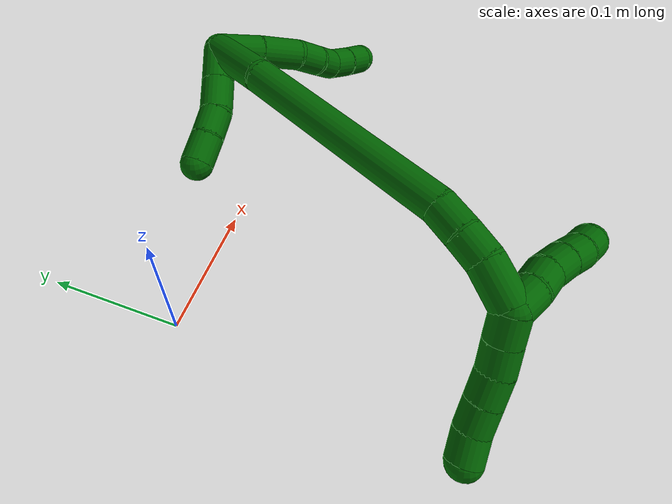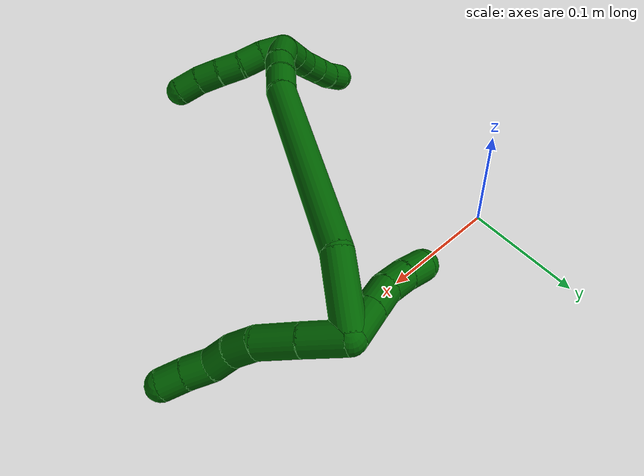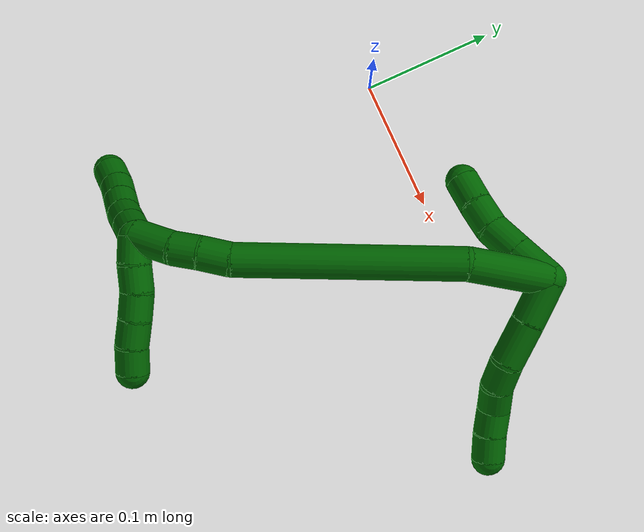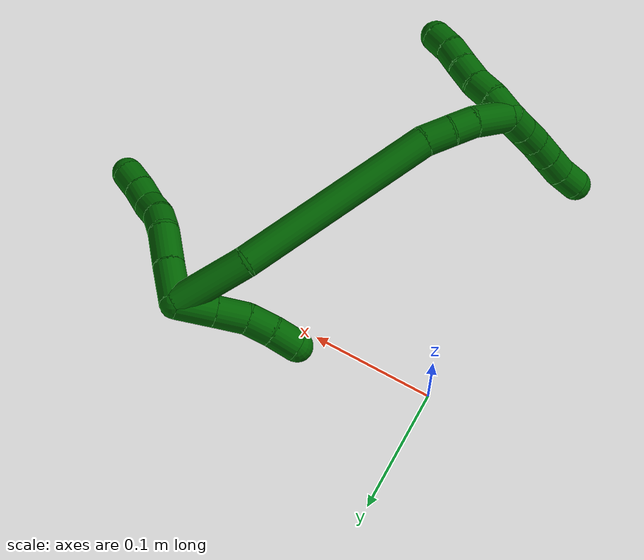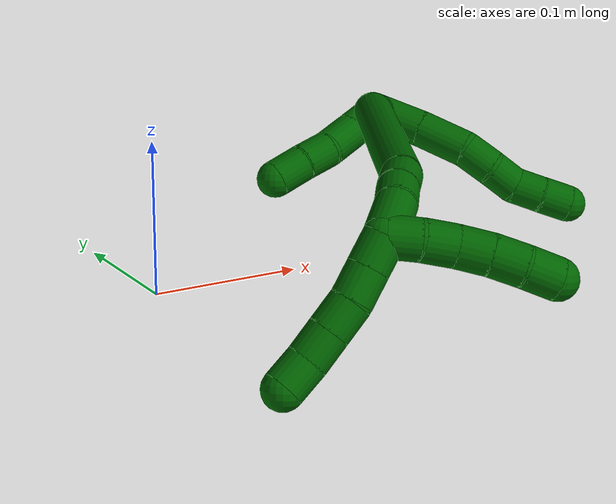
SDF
<sdf version="1.7">
 <world name="default">
  <model name="6">
   <static>0</static>
   <link name="6">
    <collision name="collision-cylinder-e_1_2_8">
     <pose>0.013033 -0.009755 -0.005361 2.0733 0.863958 1.32411</pose>
     <geometry><cylinder><radius>0.0125</radius><length>0.034279</length></cylinder></geometry>
     <surface>
      <friction><ode><mu>1.16</mu><mu2>1.16</mu2><slip1>0</slip1><slip2>0</slip2></ode></friction>
      <contact><ode><kp>1e+06</kp><kd>1</kd><max_vel>0</max_vel><min_depth>0.001</min_depth></ode></contact>
     </surface>
    </collision>
    <visual name="visual-cylinder-e_1_2_8">
     <pose>0.013033 -0.009755 -0.005361 2.0733 0.863958 1.32411</pose>
     <geometry><cylinder><radius>0.0125</radius><length>0.034279</length></cylinder></geometry>
     <material><ambient>0 0.392157 0.003922 1</ambient></material>
    </visual>
    <collision name="collision-cylinder-e_2_8_9">
     <pose>0.038596 -0.029099 -0.016947 2.14661 0.831157 1.36474</pose>
     <geometry><cylinder><radius>0.0125</radius><length>0.033921</length></cylinder></geometry>
     <surface>
      <friction><ode><mu>1.16</mu><mu2>1.16</mu2><slip1>0</slip1><slip2>0</slip2></ode></friction>
      <contact><ode><kp>1e+06</kp><kd>1</kd><max_vel>0</max_vel><min_depth>0.001</min_depth></ode></contact>
     </surface>
    </collision>
    <visual name="visual-cylinder-e_2_8_9">
     <pose>0.038596 -0.029099 -0.016947 2.14661 0.831157 1.36474</pose>
     <geometry><cylinder><radius>0.0125</radius><length>0.033921</length></cylinder></geometry>
     <material><ambient>0 0.392157 0.003922 1</ambient></material>
    </visual>
    <collision name="collision-cylinder-e_3_9_10">
     <pose>0.059104 -0.042882 -0.029267 2.53882 0.823093 1.90386</pose>
     <geometry><cylinder><radius>0.0125</radius><length>0.021764</length></cylinder></geometry>
     <surface>
      <friction><ode><mu>1.16</mu><mu2>1.16</mu2><slip1>0</slip1><slip2>0</slip2></ode></friction>
      <contact><ode><kp>1e+06</kp><kd>1</kd><max_vel>0</max_vel><min_depth>0.001</min_depth></ode></contact>
     </surface>
    </collision>
    <visual name="visual-cylinder-e_3_9_10">
     <pose>0.059104 -0.042882 -0.029267 2.53882 0.823093 1.90386</pose>
     <geometry><cylinder><radius>0.0125</radius><length>0.021764</length></cylinder></geometry>
     <material><ambient>0 0.392157 0.003922 1</ambient></material>
    </visual>
    <collision name="collision-cylinder-e_4_10_11">
     <pose>0.075033 -0.048637 -0.041229 2.88165 0.918602 2.62485</pose>
     <geometry><cylinder><radius>0.0125</radius><length>0.020005</length></cylinder></geometry>
     <surface>
      <friction><ode><mu>1.16</mu><mu2>1.16</mu2><slip1>0</slip1><slip2>0</slip2></ode></friction>
      <contact><ode><kp>1e+06</kp><kd>1</kd><max_vel>0</max_vel><min_depth>0.001</min_depth></ode></contact>
     </surface>
    </collision>
    <visual name="visual-cylinder-e_4_10_11">
     <pose>0.075033 -0.048637 -0.041229 2.88165 0.918602 2.62485</pose>
     <geometry><cylinder><radius>0.0125</radius><length>0.020005</length></cylinder></geometry>
     <material><ambient>0 0.392157 0.003922 1</ambient></material>
    </visual>
    <collision name="collision-cylinder-e_5_11_12">
     <pose>0.091966 -0.053324 -0.050195 2.35182 1.11519 1.96328</pose>
     <geometry><cylinder><radius>0.0125</radius><length>0.020009</length></cylinder></geometry>
     <surface>
      <friction><ode><mu>1.16</mu><mu2>1.16</mu2><slip1>0</slip1><slip2>0</slip2></ode></friction>
      <contact><ode><kp>1e+06</kp><kd>1</kd><max_vel>0</max_vel><min_depth>0.001</min_depth></ode></contact>
     </surface>
    </collision>
    <visual name="visual-cylinder-e_5_11_12">
     <pose>0.091966 -0.053324 -0.050195 2.35182 1.11519 1.96328</pose>
     <geometry><cylinder><radius>0.0125</radius><length>0.020009</length></cylinder></geometry>
     <material><ambient>0 0.392157 0.003922 1</ambient></material>
    </visual>
    <collision name="collision-cylinder-e_6_12_6">
     <pose>0.110212 -0.058732 -0.056331 2.49716 1.18152 2.21783</pose>
     <geometry><cylinder><radius>0.0125</radius><length>0.020022</length></cylinder></geometry>
     <surface>
      <friction><ode><mu>1.16</mu><mu2>1.16</mu2><slip1>0</slip1><slip2>0</slip2></ode></friction>
      <contact><ode><kp>1e+06</kp><kd>1</kd><max_vel>0</max_vel><min_depth>0.001</min_depth></ode></contact>
     </surface>
    </collision>
    <visual name="visual-cylinder-e_6_12_6">
     <pose>0.110212 -0.058732 -0.056331 2.49716 1.18152 2.21783</pose>
     <geometry><cylinder><radius>0.0125</radius><length>0.020022</length></cylinder></geometry>
     <material><ambient>0 0.392157 0.003922 1</ambient></material>
    </visual>
    <collision name="collision-cylinder-e_1_2_13">
     <pose>-0.012018 -0.006648 -0.006311 2.33024 -0.919185 -1.71214</pose>
     <geometry><cylinder><radius>0.0125</radius><length>0.030229</length></cylinder></geometry>
     <surface>
      <friction><ode><mu>1.16</mu><mu2>1.16</mu2><slip1>0</slip1><slip2>0</slip2></ode></friction>
      <contact><ode><kp>1e+06</kp><kd>1</kd><max_vel>0</max_vel><min_depth>0.001</min_depth></ode></contact>
     </surface>
    </collision>
    <visual name="visual-cylinder-e_1_2_13">
     <pose>-0.012018 -0.006648 -0.006311 2.33024 -0.919185 -1.71214</pose>
     <geometry><cylinder><radius>0.0125</radius><length>0.030229</length></cylinder></geometry>
     <material><ambient>0 0.392157 0.003922 1</ambient></material>
    </visual>
    <collision name="collision-cylinder-e_2_13_14">
     <pose>-0.034285 -0.018862 -0.01799 2.33797 -0.924461 -1.72927</pose>
     <geometry><cylinder><radius>0.0125</radius><length>0.02568</length></cylinder></geometry>
     <surface>
      <friction><ode><mu>1.16</mu><mu2>1.16</mu2><slip1>0</slip1><slip2>0</slip2></ode></friction>
      <contact><ode><kp>1e+06</kp><kd>1</kd><max_vel>0</max_vel><min_depth>0.001</min_depth></ode></contact>
     </surface>
    </collision>
    <visual name="visual-cylinder-e_2_13_14">
     <pose>-0.034285 -0.018862 -0.01799 2.33797 -0.924461 -1.72927</pose>
     <geometry><cylinder><radius>0.0125</radius><length>0.02568</length></cylinder></geometry>
     <material><ambient>0 0.392157 0.003922 1</ambient></material>
    </visual>
    <collision name="collision-cylinder-e_3_14_15">
     <pose>-0.054191 -0.026666 -0.027571 2.65339 -1.11191 -2.37909</pose>
     <geometry><cylinder><radius>0.0125</radius><length>0.021541</length></cylinder></geometry>
     <surface>
      <friction><ode><mu>1.16</mu><mu2>1.16</mu2><slip1>0</slip1><slip2>0</slip2></ode></friction>
      <contact><ode><kp>1e+06</kp><kd>1</kd><max_vel>0</max_vel><min_depth>0.001</min_depth></ode></contact>
     </surface>
    </collision>
    <visual name="visual-cylinder-e_3_14_15">
     <pose>-0.054191 -0.026666 -0.027571 2.65339 -1.11191 -2.37909</pose>
     <geometry><cylinder><radius>0.0125</radius><length>0.021541</length></cylinder></geometry>
     <material><ambient>0 0.392157 0.003922 1</ambient></material>
    </visual>
    <collision name="collision-cylinder-e_4_15_5">
     <pose>-0.07379 -0.030318 -0.03691 2.87244 -1.07968 -2.69715</pose>
     <geometry><cylinder><radius>0.0125</radius><length>0.022551</length></cylinder></geometry>
     <surface>
      <friction><ode><mu>1.16</mu><mu2>1.16</mu2><slip1>0</slip1><slip2>0</slip2></ode></friction>
      <contact><ode><kp>1e+06</kp><kd>1</kd><max_vel>0</max_vel><min_depth>0.001</min_depth></ode></contact>
     </surface>
    </collision>
    <visual name="visual-cylinder-e_4_15_5">
     <pose>-0.07379 -0.030318 -0.03691 2.87244 -1.07968 -2.69715</pose>
     <geometry><cylinder><radius>0.0125</radius><length>0.022551</length></cylinder></geometry>
     <material><ambient>0 0.392157 0.003922 1</ambient></material>
    </visual>
    <collision name="collision-cylinder-e_1_2_16">
     <pose>-0.012426 -0.027959 0.002414 1.48469 -0.416839 -0.38328</pose>
     <geometry><cylinder><radius>0.0125</radius><length>0.061383</length></cylinder></geometry>
     <surface>
      <friction><ode><mu>1.16</mu><mu2>1.16</mu2><slip1>0</slip1><slip2>0</slip2></ode></friction>
      <contact><ode><kp>1e+06</kp><kd>1</kd><max_vel>0</max_vel><min_depth>0.001</min_depth></ode></contact>
     </surface>
    </collision>
    <visual name="visual-cylinder-e_1_2_16">
     <pose>-0.012426 -0.027959 0.002414 1.48469 -0.416839 -0.38328</pose>
     <geometry><cylinder><radius>0.0125</radius><length>0.061383</length></cylinder></geometry>
     <material><ambient>0 0.392157 0.003922 1</ambient></material>
    </visual>
    <collision name="collision-cylinder-e_2_16_17">
     <pose>-0.046829 -0.134534 -0.007422 1.72536 -0.269498 -0.31405</pose>
     <geometry><cylinder><radius>0.0125</radius><length>0.165087</length></cylinder></geometry>
     <surface>
      <friction><ode><mu>1.16</mu><mu2>1.16</mu2><slip1>0</slip1><slip2>0</slip2></ode></friction>
      <contact><ode><kp>1e+06</kp><kd>1</kd><max_vel>0</max_vel><min_depth>0.001</min_depth></ode></contact>
     </surface>
    </collision>
    <visual name="visual-cylinder-e_2_16_17">
     <pose>-0.046829 -0.134534 -0.007422 1.72536 -0.269498 -0.31405</pose>
     <geometry><cylinder><radius>0.0125</radius><length>0.165087</length></cylinder></geometry>
     <material><ambient>0 0.392157 0.003922 1</ambient></material>
    </visual>
    <collision name="collision-cylinder-e_3_17_18">
     <pose>-0.073922 -0.222978 -0.022171 1.81998 -0.467206 -0.594053</pose>
     <geometry><cylinder><radius>0.0125</radius><length>0.022717</length></cylinder></geometry>
     <surface>
      <friction><ode><mu>1.16</mu><mu2>1.16</mu2><slip1>0</slip1><slip2>0</slip2></ode></friction>
      <contact><ode><kp>1e+06</kp><kd>1</kd><max_vel>0</max_vel><min_depth>0.001</min_depth></ode></contact>
     </surface>
    </collision>
    <visual name="visual-cylinder-e_3_17_18">
     <pose>-0.073922 -0.222978 -0.022171 1.81998 -0.467206 -0.594053</pose>
     <geometry><cylinder><radius>0.0125</radius><length>0.022717</length></cylinder></geometry>
     <material><ambient>0 0.392157 0.003922 1</ambient></material>
    </visual>
    <collision name="collision-cylinder-e_4_18_19">
     <pose>-0.083066 -0.241396 -0.028141 1.95465 -0.41019 -0.598223</pose>
     <geometry><cylinder><radius>0.0125</radius><length>0.020204</length></cylinder></geometry>
     <surface>
      <friction><ode><mu>1.16</mu><mu2>1.16</mu2><slip1>0</slip1><slip2>0</slip2></ode></friction>
      <contact><ode><kp>1e+06</kp><kd>1</kd><max_vel>0</max_vel><min_depth>0.001</min_depth></ode></contact>
     </surface>
    </collision>
    <visual name="visual-cylinder-e_4_18_19">
     <pose>-0.083066 -0.241396 -0.028141 1.95465 -0.41019 -0.598223</pose>
     <geometry><cylinder><radius>0.0125</radius><length>0.020204</length></cylinder></geometry>
     <material><ambient>0 0.392157 0.003922 1</ambient></material>
    </visual>
    <collision name="collision-cylinder-e_5_19_1">
     <pose>-0.094833 -0.261211 -0.038563 2.12528 -0.530072 -0.906941</pose>
     <geometry><cylinder><radius>0.0125</radius><length>0.03061</length></cylinder></geometry>
     <surface>
      <friction><ode><mu>1.16</mu><mu2>1.16</mu2><slip1>0</slip1><slip2>0</slip2></ode></friction>
      <contact><ode><kp>1e+06</kp><kd>1</kd><max_vel>0</max_vel><min_depth>0.001</min_depth></ode></contact>
     </surface>
    </collision>
    <visual name="visual-cylinder-e_5_19_1">
     <pose>-0.094833 -0.261211 -0.038563 2.12528 -0.530072 -0.906941</pose>
     <geometry><cylinder><radius>0.0125</radius><length>0.03061</length></cylinder></geometry>
     <material><ambient>0 0.392157 0.003922 1</ambient></material>
    </visual>
    <collision name="collision-cylinder-e_1_1_20">
     <pose>-0.093008 -0.275229 -0.046388 1.87379 1.274 1.57728</pose>
     <geometry><cylinder><radius>0.0125</radius><length>0.02</length></cylinder></geometry>
     <surface>
      <friction><ode><mu>1.16</mu><mu2>1.16</mu2><slip1>0</slip1><slip2>0</slip2></ode></friction>
      <contact><ode><kp>1e+06</kp><kd>1</kd><max_vel>0</max_vel><min_depth>0.001</min_depth></ode></contact>
     </surface>
    </collision>
    <visual name="visual-cylinder-e_1_1_20">
     <pose>-0.093008 -0.275229 -0.046388 1.87379 1.274 1.57728</pose>
     <geometry><cylinder><radius>0.0125</radius><length>0.02</length></cylinder></geometry>
     <material><ambient>0 0.392157 0.003922 1</ambient></material>
    </visual>
    <collision name="collision-cylinder-e_2_20_21">
     <pose>-0.073694 -0.279331 -0.049047 2.50855 1.34737 2.36288</pose>
     <geometry><cylinder><radius>0.0125</radius><length>0.02</length></cylinder></geometry>
     <surface>
      <friction><ode><mu>1.16</mu><mu2>1.16</mu2><slip1>0</slip1><slip2>0</slip2></ode></friction>
      <contact><ode><kp>1e+06</kp><kd>1</kd><max_vel>0</max_vel><min_depth>0.001</min_depth></ode></contact>
     </surface>
    </collision>
    <visual name="visual-cylinder-e_2_20_21">
     <pose>-0.073694 -0.279331 -0.049047 2.50855 1.34737 2.36288</pose>
     <geometry><cylinder><radius>0.0125</radius><length>0.02</length></cylinder></geometry>
     <material><ambient>0 0.392157 0.003922 1</ambient></material>
    </visual>
    <collision name="collision-cylinder-e_3_21_22">
     <pose>-0.054687 -0.283712 -0.053049 2.19601 1.18249 1.83949</pose>
     <geometry><cylinder><radius>0.0125</radius><length>0.02</length></cylinder></geometry>
     <surface>
      <friction><ode><mu>1.16</mu><mu2>1.16</mu2><slip1>0</slip1><slip2>0</slip2></ode></friction>
      <contact><ode><kp>1e+06</kp><kd>1</kd><max_vel>0</max_vel><min_depth>0.001</min_depth></ode></contact>
     </surface>
    </collision>
    <visual name="visual-cylinder-e_3_21_22">
     <pose>-0.054687 -0.283712 -0.053049 2.19601 1.18249 1.83949</pose>
     <geometry><cylinder><radius>0.0125</radius><length>0.02</length></cylinder></geometry>
     <material><ambient>0 0.392157 0.003922 1</ambient></material>
    </visual>
    <collision name="collision-cylinder-e_4_22_23">
     <pose>-0.036513 -0.290116 -0.058322 2.31288 1.10136 1.89848</pose>
     <geometry><cylinder><radius>0.0125</radius><length>0.02</length></cylinder></geometry>
     <surface>
      <friction><ode><mu>1.16</mu><mu2>1.16</mu2><slip1>0</slip1><slip2>0</slip2></ode></friction>
      <contact><ode><kp>1e+06</kp><kd>1</kd><max_vel>0</max_vel><min_depth>0.001</min_depth></ode></contact>
     </surface>
    </collision>
    <visual name="visual-cylinder-e_4_22_23">
     <pose>-0.036513 -0.290116 -0.058322 2.31288 1.10136 1.89848</pose>
     <geometry><cylinder><radius>0.0125</radius><length>0.02</length></cylinder></geometry>
     <material><ambient>0 0.392157 0.003922 1</ambient></material>
    </visual>
    <collision name="collision-cylinder-e_5_23_4">
     <pose>-0.018421 -0.295293 -0.064909 2.66062 1.16132 2.42622</pose>
     <geometry><cylinder><radius>0.0125</radius><length>0.02</length></cylinder></geometry>
     <surface>
      <friction><ode><mu>1.16</mu><mu2>1.16</mu2><slip1>0</slip1><slip2>0</slip2></ode></friction>
      <contact><ode><kp>1e+06</kp><kd>1</kd><max_vel>0</max_vel><min_depth>0.001</min_depth></ode></contact>
     </surface>
    </collision>
    <visual name="visual-cylinder-e_5_23_4">
     <pose>-0.018421 -0.295293 -0.064909 2.66062 1.16132 2.42622</pose>
     <geometry><cylinder><radius>0.0125</radius><length>0.02</length></cylinder></geometry>
     <material><ambient>0 0.392157 0.003922 1</ambient></material>
    </visual>
    <collision name="collision-cylinder-e_1_1_24">
     <pose>-0.107475 -0.272967 -0.054214 3.08081 -0.51257 -2.91061</pose>
     <geometry><cylinder><radius>0.0125</radius><length>0.02</length></cylinder></geometry>
     <surface>
      <friction><ode><mu>1.16</mu><mu2>1.16</mu2><slip1>0</slip1><slip2>0</slip2></ode></friction>
      <contact><ode><kp>1e+06</kp><kd>1</kd><max_vel>0</max_vel><min_depth>0.001</min_depth></ode></contact>
     </surface>
    </collision>
    <visual name="visual-cylinder-e_1_1_24">
     <pose>-0.107475 -0.272967 -0.054214 3.08081 -0.51257 -2.91061</pose>
     <geometry><cylinder><radius>0.0125</radius><length>0.02</length></cylinder></geometry>
     <material><ambient>0 0.392157 0.003922 1</ambient></material>
    </visual>
    <collision name="collision-cylinder-e_2_24_25">
     <pose>-0.117277 -0.274179 -0.071604 3.06325 -0.511898 -2.84429</pose>
     <geometry><cylinder><radius>0.0125</radius><length>0.02</length></cylinder></geometry>
     <surface>
      <friction><ode><mu>1.16</mu><mu2>1.16</mu2><slip1>0</slip1><slip2>0</slip2></ode></friction>
      <contact><ode><kp>1e+06</kp><kd>1</kd><max_vel>0</max_vel><min_depth>0.001</min_depth></ode></contact>
     </surface>
    </collision>
    <visual name="visual-cylinder-e_2_24_25">
     <pose>-0.117277 -0.274179 -0.071604 3.06325 -0.511898 -2.84429</pose>
     <geometry><cylinder><radius>0.0125</radius><length>0.02</length></cylinder></geometry>
     <material><ambient>0 0.392157 0.003922 1</ambient></material>
    </visual>
    <collision name="collision-cylinder-e_3_25_26">
     <pose>-0.128211 -0.274525 -0.088261 -3.09947 -0.647972 3.01632</pose>
     <geometry><cylinder><radius>0.0125</radius><length>0.02</length></cylinder></geometry>
     <surface>
      <friction><ode><mu>1.16</mu><mu2>1.16</mu2><slip1>0</slip1><slip2>0</slip2></ode></friction>
      <contact><ode><kp>1e+06</kp><kd>1</kd><max_vel>0</max_vel><min_depth>0.001</min_depth></ode></contact>
     </surface>
    </collision>
    <visual name="visual-cylinder-e_3_25_26">
     <pose>-0.128211 -0.274525 -0.088261 -3.09947 -0.647972 3.01632</pose>
     <geometry><cylinder><radius>0.0125</radius><length>0.02</length></cylinder></geometry>
     <material><ambient>0 0.392157 0.003922 1</ambient></material>
    </visual>
    <collision name="collision-cylinder-e_4_26_27">
     <pose>-0.140276 -0.273862 -0.104199 -3.10051 -0.647124 3.01922</pose>
     <geometry><cylinder><radius>0.0125</radius><length>0.02</length></cylinder></geometry>
     <surface>
      <friction><ode><mu>1.16</mu><mu2>1.16</mu2><slip1>0</slip1><slip2>0</slip2></ode></friction>
      <contact><ode><kp>1e+06</kp><kd>1</kd><max_vel>0</max_vel><min_depth>0.001</min_depth></ode></contact>
     </surface>
    </collision>
    <visual name="visual-cylinder-e_4_26_27">
     <pose>-0.140276 -0.273862 -0.104199 -3.10051 -0.647124 3.01922</pose>
     <geometry><cylinder><radius>0.0125</radius><length>0.02</length></cylinder></geometry>
     <material><ambient>0 0.392157 0.003922 1</ambient></material>
    </visual>
    <collision name="collision-cylinder-e_5_27_3">
     <pose>-0.153264 -0.274375 -0.119302 3.02424 -0.769695 -2.85354</pose>
     <geometry><cylinder><radius>0.0125</radius><length>0.02</length></cylinder></geometry>
     <surface>
      <friction><ode><mu>1.16</mu><mu2>1.16</mu2><slip1>0</slip1><slip2>0</slip2></ode></friction>
      <contact><ode><kp>1e+06</kp><kd>1</kd><max_vel>0</max_vel><min_depth>0.001</min_depth></ode></contact>
     </surface>
    </collision>
    <visual name="visual-cylinder-e_5_27_3">
     <pose>-0.153264 -0.274375 -0.119302 3.02424 -0.769695 -2.85354</pose>
     <geometry><cylinder><radius>0.0125</radius><length>0.02</length></cylinder></geometry>
     <material><ambient>0 0.392157 0.003922 1</ambient></material>
    </visual>
    <collision name="collision-sphere-3">
     <pose>-0.160223 -0.275216 -0.126434 0 -0 0</pose>
     <geometry><sphere><radius>0.0125</radius></sphere></geometry>
     <surface>
      <friction><ode><mu>1.16</mu><mu2>1.16</mu2><slip1>0</slip1><slip2>0</slip2></ode></friction>
      <contact><ode><kp>1e+06</kp><kd>1</kd><max_vel>0</max_vel><min_depth>0.001</min_depth></ode></contact>
     </surface>
    </collision>
    <visual name="visual-sphere-3">
     <pose>-0.160223 -0.275216 -0.126434 0 -0 0</pose>
     <geometry><sphere><radius>0.0125</radius></sphere></geometry>
     <material><ambient>0 0.392157 0.003922 1</ambient></material>
    </visual>
    <collision name="collision-sphere-27">
     <pose>-0.146305 -0.273534 -0.11217 0 -0 0</pose>
     <geometry><sphere><radius>0.0125</radius></sphere></geometry>
     <surface>
      <friction><ode><mu>1.16</mu><mu2>1.16</mu2><slip1>0</slip1><slip2>0</slip2></ode></friction>
      <contact><ode><kp>1e+06</kp><kd>1</kd><max_vel>0</max_vel><min_depth>0.001</min_depth></ode></contact>
     </surface>
    </collision>
    <visual name="visual-sphere-27">
     <pose>-0.146305 -0.273534 -0.11217 0 -0 0</pose>
     <geometry><sphere><radius>0.0125</radius></sphere></geometry>
     <material><ambient>0 0.392157 0.003922 1</ambient></material>
    </visual>
    <collision name="collision-sphere-26">
     <pose>-0.134247 -0.274189 -0.096227 0 -0 0</pose>
     <geometry><sphere><radius>0.0125</radius></sphere></geometry>
     <surface>
      <friction><ode><mu>1.16</mu><mu2>1.16</mu2><slip1>0</slip1><slip2>0</slip2></ode></friction>
      <contact><ode><kp>1e+06</kp><kd>1</kd><max_vel>0</max_vel><min_depth>0.001</min_depth></ode></contact>
     </surface>
    </collision>
    <visual name="visual-sphere-26">
     <pose>-0.134247 -0.274189 -0.096227 0 -0 0</pose>
     <geometry><sphere><radius>0.0125</radius></sphere></geometry>
     <material><ambient>0 0.392157 0.003922 1</ambient></material>
    </visual>
    <collision name="collision-sphere-25">
     <pose>-0.122176 -0.274861 -0.080295 0 -0 0</pose>
     <geometry><sphere><radius>0.0125</radius></sphere></geometry>
     <surface>
      <friction><ode><mu>1.16</mu><mu2>1.16</mu2><slip1>0</slip1><slip2>0</slip2></ode></friction>
      <contact><ode><kp>1e+06</kp><kd>1</kd><max_vel>0</max_vel><min_depth>0.001</min_depth></ode></contact>
     </surface>
    </collision>
    <visual name="visual-sphere-25">
     <pose>-0.122176 -0.274861 -0.080295 0 -0 0</pose>
     <geometry><sphere><radius>0.0125</radius></sphere></geometry>
     <material><ambient>0 0.392157 0.003922 1</ambient></material>
    </visual>
    <collision name="collision-sphere-24">
     <pose>-0.112379 -0.273496 -0.062913 0 -0 0</pose>
     <geometry><sphere><radius>0.0125</radius></sphere></geometry>
     <surface>
      <friction><ode><mu>1.16</mu><mu2>1.16</mu2><slip1>0</slip1><slip2>0</slip2></ode></friction>
      <contact><ode><kp>1e+06</kp><kd>1</kd><max_vel>0</max_vel><min_depth>0.001</min_depth></ode></contact>
     </surface>
    </collision>
    <visual name="visual-sphere-24">
     <pose>-0.112379 -0.273496 -0.062913 0 -0 0</pose>
     <geometry><sphere><radius>0.0125</radius></sphere></geometry>
     <material><ambient>0 0.392157 0.003922 1</ambient></material>
    </visual>
    <collision name="collision-sphere-4">
     <pose>-0.009248 -0.297134 -0.068439 0 -0 0</pose>
     <geometry><sphere><radius>0.0125</radius></sphere></geometry>
     <surface>
      <friction><ode><mu>1.16</mu><mu2>1.16</mu2><slip1>0</slip1><slip2>0</slip2></ode></friction>
      <contact><ode><kp>1e+06</kp><kd>1</kd><max_vel>0</max_vel><min_depth>0.001</min_depth></ode></contact>
     </surface>
    </collision>
    <visual name="visual-sphere-4">
     <pose>-0.009248 -0.297134 -0.068439 0 -0 0</pose>
     <geometry><sphere><radius>0.0125</radius></sphere></geometry>
     <material><ambient>0 0.392157 0.003922 1</ambient></material>
    </visual>
    <collision name="collision-sphere-23">
     <pose>-0.027595 -0.293451 -0.06138 0 -0 0</pose>
     <geometry><sphere><radius>0.0125</radius></sphere></geometry>
     <surface>
      <friction><ode><mu>1.16</mu><mu2>1.16</mu2><slip1>0</slip1><slip2>0</slip2></ode></friction>
      <contact><ode><kp>1e+06</kp><kd>1</kd><max_vel>0</max_vel><min_depth>0.001</min_depth></ode></contact>
     </surface>
    </collision>
    <visual name="visual-sphere-23">
     <pose>-0.027595 -0.293451 -0.06138 0 -0 0</pose>
     <geometry><sphere><radius>0.0125</radius></sphere></geometry>
     <material><ambient>0 0.392157 0.003922 1</ambient></material>
    </visual>
    <collision name="collision-sphere-22">
     <pose>-0.045431 -0.286782 -0.055265 0 -0 0</pose>
     <geometry><sphere><radius>0.0125</radius></sphere></geometry>
     <surface>
      <friction><ode><mu>1.16</mu><mu2>1.16</mu2><slip1>0</slip1><slip2>0</slip2></ode></friction>
      <contact><ode><kp>1e+06</kp><kd>1</kd><max_vel>0</max_vel><min_depth>0.001</min_depth></ode></contact>
     </surface>
    </collision>
    <visual name="visual-sphere-22">
     <pose>-0.045431 -0.286782 -0.055265 0 -0 0</pose>
     <geometry><sphere><radius>0.0125</radius></sphere></geometry>
     <material><ambient>0 0.392157 0.003922 1</ambient></material>
    </visual>
    <collision name="collision-sphere-21">
     <pose>-0.063942 -0.280642 -0.050833 0 -0 0</pose>
     <geometry><sphere><radius>0.0125</radius></sphere></geometry>
     <surface>
      <friction><ode><mu>1.16</mu><mu2>1.16</mu2><slip1>0</slip1><slip2>0</slip2></ode></friction>
      <contact><ode><kp>1e+06</kp><kd>1</kd><max_vel>0</max_vel><min_depth>0.001</min_depth></ode></contact>
     </surface>
    </collision>
    <visual name="visual-sphere-21">
     <pose>-0.063942 -0.280642 -0.050833 0 -0 0</pose>
     <geometry><sphere><radius>0.0125</radius></sphere></geometry>
     <material><ambient>0 0.392157 0.003922 1</ambient></material>
    </visual>
    <collision name="collision-sphere-20">
     <pose>-0.083445 -0.27802 -0.04726 0 -0 0</pose>
     <geometry><sphere><radius>0.0125</radius></sphere></geometry>
     <surface>
      <friction><ode><mu>1.16</mu><mu2>1.16</mu2><slip1>0</slip1><slip2>0</slip2></ode></friction>
      <contact><ode><kp>1e+06</kp><kd>1</kd><max_vel>0</max_vel><min_depth>0.001</min_depth></ode></contact>
     </surface>
    </collision>
    <visual name="visual-sphere-20">
     <pose>-0.083445 -0.27802 -0.04726 0 -0 0</pose>
     <geometry><sphere><radius>0.0125</radius></sphere></geometry>
     <material><ambient>0 0.392157 0.003922 1</ambient></material>
    </visual>
    <collision name="collision-sphere-12">
     <pose>0.10095 -0.05645 -0.053294 0 -0 0</pose>
     <geometry><sphere><radius>0.0125</radius></sphere></geometry>
     <surface>
      <friction><ode><mu>1.16</mu><mu2>1.16</mu2><slip1>0</slip1><slip2>0</slip2></ode></friction>
      <contact><ode><kp>1e+06</kp><kd>1</kd><max_vel>0</max_vel><min_depth>0.001</min_depth></ode></contact>
     </surface>
    </collision>
    <visual name="visual-sphere-12">
     <pose>0.10095 -0.05645 -0.053294 0 -0 0</pose>
     <geometry><sphere><radius>0.0125</radius></sphere></geometry>
     <material><ambient>0 0.392157 0.003922 1</ambient></material>
    </visual>
    <collision name="collision-sphere-11">
     <pose>0.082982 -0.050197 -0.047096 0 -0 0</pose>
     <geometry><sphere><radius>0.0125</radius></sphere></geometry>
     <surface>
      <friction><ode><mu>1.16</mu><mu2>1.16</mu2><slip1>0</slip1><slip2>0</slip2></ode></friction>
      <contact><ode><kp>1e+06</kp><kd>1</kd><max_vel>0</max_vel><min_depth>0.001</min_depth></ode></contact>
     </surface>
    </collision>
    <visual name="visual-sphere-11">
     <pose>0.082982 -0.050197 -0.047096 0 -0 0</pose>
     <geometry><sphere><radius>0.0125</radius></sphere></geometry>
     <material><ambient>0 0.392157 0.003922 1</ambient></material>
    </visual>
    <collision name="collision-sphere-10">
     <pose>0.067083 -0.047077 -0.035362 0 -0 0</pose>
     <geometry><sphere><radius>0.0125</radius></sphere></geometry>
     <surface>
      <friction><ode><mu>1.16</mu><mu2>1.16</mu2><slip1>0</slip1><slip2>0</slip2></ode></friction>
      <contact><ode><kp>1e+06</kp><kd>1</kd><max_vel>0</max_vel><min_depth>0.001</min_depth></ode></contact>
     </surface>
    </collision>
    <visual name="visual-sphere-10">
     <pose>0.067083 -0.047077 -0.035362 0 -0 0</pose>
     <geometry><sphere><radius>0.0125</radius></sphere></geometry>
     <material><ambient>0 0.392157 0.003922 1</ambient></material>
    </visual>
    <collision name="collision-sphere-9">
     <pose>0.051125 -0.038687 -0.023171 0 -0 0</pose>
     <geometry><sphere><radius>0.0125</radius></sphere></geometry>
     <surface>
      <friction><ode><mu>1.16</mu><mu2>1.16</mu2><slip1>0</slip1><slip2>0</slip2></ode></friction>
      <contact><ode><kp>1e+06</kp><kd>1</kd><max_vel>0</max_vel><min_depth>0.001</min_depth></ode></contact>
     </surface>
    </collision>
    <visual name="visual-sphere-9">
     <pose>0.051125 -0.038687 -0.023171 0 -0 0</pose>
     <geometry><sphere><radius>0.0125</radius></sphere></geometry>
     <material><ambient>0 0.392157 0.003922 1</ambient></material>
    </visual>
    <collision name="collision-sphere-2">
     <geometry><sphere><radius>0.0125</radius></sphere></geometry>
     <surface>
      <friction><ode><mu>1.16</mu><mu2>1.16</mu2><slip1>0</slip1><slip2>0</slip2></ode></friction>
      <contact><ode><kp>1e+06</kp><kd>1</kd><max_vel>0</max_vel><min_depth>0.001</min_depth></ode></contact>
     </surface>
    </collision>
    <visual name="visual-sphere-2">
     <geometry><sphere><radius>0.0125</radius></sphere></geometry>
     <material><ambient>0 0.392157 0.003922 1</ambient></material>
    </visual>
    <collision name="collision-sphere-19">
     <pose>-0.087095 -0.249985 -0.031611 0 -0 0</pose>
     <geometry><sphere><radius>0.0125</radius></sphere></geometry>
     <surface>
      <friction><ode><mu>1.16</mu><mu2>1.16</mu2><slip1>0</slip1><slip2>0</slip2></ode></friction>
      <contact><ode><kp>1e+06</kp><kd>1</kd><max_vel>0</max_vel><min_depth>0.001</min_depth></ode></contact>
     </surface>
    </collision>
    <visual name="visual-sphere-19">
     <pose>-0.087095 -0.249985 -0.031611 0 -0 0</pose>
     <geometry><sphere><radius>0.0125</radius></sphere></geometry>
     <material><ambient>0 0.392157 0.003922 1</ambient></material>
    </visual>
    <collision name="collision-sphere-8">
     <pose>0.026067 -0.01951 -0.010722 0 -0 0</pose>
     <geometry><sphere><radius>0.0125</radius></sphere></geometry>
     <surface>
      <friction><ode><mu>1.16</mu><mu2>1.16</mu2><slip1>0</slip1><slip2>0</slip2></ode></friction>
      <contact><ode><kp>1e+06</kp><kd>1</kd><max_vel>0</max_vel><min_depth>0.001</min_depth></ode></contact>
     </surface>
    </collision>
    <visual name="visual-sphere-8">
     <pose>0.026067 -0.01951 -0.010722 0 -0 0</pose>
     <geometry><sphere><radius>0.0125</radius></sphere></geometry>
     <material><ambient>0 0.392157 0.003922 1</ambient></material>
    </visual>
    <collision name="collision-sphere-6">
     <pose>0.119474 -0.061015 -0.059368 0 -0 0</pose>
     <geometry><sphere><radius>0.0125</radius></sphere></geometry>
     <surface>
      <friction><ode><mu>1.16</mu><mu2>1.16</mu2><slip1>0</slip1><slip2>0</slip2></ode></friction>
      <contact><ode><kp>1e+06</kp><kd>1</kd><max_vel>0</max_vel><min_depth>0.001</min_depth></ode></contact>
     </surface>
    </collision>
    <visual name="visual-sphere-6">
     <pose>0.119474 -0.061015 -0.059368 0 -0 0</pose>
     <geometry><sphere><radius>0.0125</radius></sphere></geometry>
     <material><ambient>0 0.392157 0.003922 1</ambient></material>
    </visual>
    <collision name="collision-sphere-13">
     <pose>-0.024035 -0.013295 -0.012623 0 -0 0</pose>
     <geometry><sphere><radius>0.0125</radius></sphere></geometry>
     <surface>
      <friction><ode><mu>1.16</mu><mu2>1.16</mu2><slip1>0</slip1><slip2>0</slip2></ode></friction>
      <contact><ode><kp>1e+06</kp><kd>1</kd><max_vel>0</max_vel><min_depth>0.001</min_depth></ode></contact>
     </surface>
    </collision>
    <visual name="visual-sphere-13">
     <pose>-0.024035 -0.013295 -0.012623 0 -0 0</pose>
     <geometry><sphere><radius>0.0125</radius></sphere></geometry>
     <material><ambient>0 0.392157 0.003922 1</ambient></material>
    </visual>
    <collision name="collision-sphere-14">
     <pose>-0.044535 -0.024429 -0.023358 0 -0 0</pose>
     <geometry><sphere><radius>0.0125</radius></sphere></geometry>
     <surface>
      <friction><ode><mu>1.16</mu><mu2>1.16</mu2><slip1>0</slip1><slip2>0</slip2></ode></friction>
      <contact><ode><kp>1e+06</kp><kd>1</kd><max_vel>0</max_vel><min_depth>0.001</min_depth></ode></contact>
     </surface>
    </collision>
    <visual name="visual-sphere-14">
     <pose>-0.044535 -0.024429 -0.023358 0 -0 0</pose>
     <geometry><sphere><radius>0.0125</radius></sphere></geometry>
     <material><ambient>0 0.392157 0.003922 1</ambient></material>
    </visual>
    <collision name="collision-sphere-15">
     <pose>-0.063847 -0.028904 -0.031784 0 -0 0</pose>
     <geometry><sphere><radius>0.0125</radius></sphere></geometry>
     <surface>
      <friction><ode><mu>1.16</mu><mu2>1.16</mu2><slip1>0</slip1><slip2>0</slip2></ode></friction>
      <contact><ode><kp>1e+06</kp><kd>1</kd><max_vel>0</max_vel><min_depth>0.001</min_depth></ode></contact>
     </surface>
    </collision>
    <visual name="visual-sphere-15">
     <pose>-0.063847 -0.028904 -0.031784 0 -0 0</pose>
     <geometry><sphere><radius>0.0125</radius></sphere></geometry>
     <material><ambient>0 0.392157 0.003922 1</ambient></material>
    </visual>
    <collision name="collision-sphere-5">
     <pose>-0.083733 -0.031732 -0.042037 0 -0 0</pose>
     <geometry><sphere><radius>0.0125</radius></sphere></geometry>
     <surface>
      <friction><ode><mu>1.16</mu><mu2>1.16</mu2><slip1>0</slip1><slip2>0</slip2></ode></friction>
      <contact><ode><kp>1e+06</kp><kd>1</kd><max_vel>0</max_vel><min_depth>0.001</min_depth></ode></contact>
     </surface>
    </collision>
    <visual name="visual-sphere-5">
     <pose>-0.083733 -0.031732 -0.042037 0 -0 0</pose>
     <geometry><sphere><radius>0.0125</radius></sphere></geometry>
     <material><ambient>0 0.392157 0.003922 1</ambient></material>
    </visual>
    <collision name="collision-sphere-16">
     <pose>-0.024852 -0.055919 0.004827 0 -0 0</pose>
     <geometry><sphere><radius>0.0125</radius></sphere></geometry>
     <surface>
      <friction><ode><mu>1.16</mu><mu2>1.16</mu2><slip1>0</slip1><slip2>0</slip2></ode></friction>
      <contact><ode><kp>1e+06</kp><kd>1</kd><max_vel>0</max_vel><min_depth>0.001</min_depth></ode></contact>
     </surface>
    </collision>
    <visual name="visual-sphere-16">
     <pose>-0.024852 -0.055919 0.004827 0 -0 0</pose>
     <geometry><sphere><radius>0.0125</radius></sphere></geometry>
     <material><ambient>0 0.392157 0.003922 1</ambient></material>
    </visual>
    <collision name="collision-sphere-17">
     <pose>-0.068806 -0.21315 -0.01967 0 -0 0</pose>
     <geometry><sphere><radius>0.0125</radius></sphere></geometry>
     <surface>
      <friction><ode><mu>1.16</mu><mu2>1.16</mu2><slip1>0</slip1><slip2>0</slip2></ode></friction>
      <contact><ode><kp>1e+06</kp><kd>1</kd><max_vel>0</max_vel><min_depth>0.001</min_depth></ode></contact>
     </surface>
    </collision>
    <visual name="visual-sphere-17">
     <pose>-0.068806 -0.21315 -0.01967 0 -0 0</pose>
     <geometry><sphere><radius>0.0125</radius></sphere></geometry>
     <material><ambient>0 0.392157 0.003922 1</ambient></material>
    </visual>
    <collision name="collision-sphere-18">
     <pose>-0.079038 -0.232806 -0.024672 0 -0 0</pose>
     <geometry><sphere><radius>0.0125</radius></sphere></geometry>
     <surface>
      <friction><ode><mu>1.16</mu><mu2>1.16</mu2><slip1>0</slip1><slip2>0</slip2></ode></friction>
      <contact><ode><kp>1e+06</kp><kd>1</kd><max_vel>0</max_vel><min_depth>0.001</min_depth></ode></contact>
     </surface>
    </collision>
    <visual name="visual-sphere-18">
     <pose>-0.079038 -0.232806 -0.024672 0 -0 0</pose>
     <geometry><sphere><radius>0.0125</radius></sphere></geometry>
     <material><ambient>0 0.392157 0.003922 1</ambient></material>
    </visual>
    <collision name="collision-sphere-1">
     <pose>-0.102571 -0.272438 -0.045515 0 -0 0</pose>
     <geometry><sphere><radius>0.0125</radius></sphere></geometry>
     <surface>
      <friction><ode><mu>1.16</mu><mu2>1.16</mu2><slip1>0</slip1><slip2>0</slip2></ode></friction>
      <contact><ode><kp>1e+06</kp><kd>1</kd><max_vel>0</max_vel><min_depth>0.001</min_depth></ode></contact>
     </surface>
    </collision>
    <visual name="visual-sphere-1">
     <pose>-0.102571 -0.272438 -0.045515 0 -0 0</pose>
     <geometry><sphere><radius>0.0125</radius></sphere></geometry>
     <material><ambient>0 0.392157 0.003922 1</ambient></material>
    </visual>
    <inertial>
     <pose>-0.038261 -0.1402 -0.031929 0 -0 0</pose>
     <mass>0.75</mass>
     <inertia>
      <ixx>0.000242</ixx>
      <ixy>0</ixy>
      <ixz>0</ixz>
      <iyy>-0.000139</iyy>
      <iyz>0</iyz>
      <izz>0.000488</izz>
     </inertia>
    </inertial>
   </link>
   <pose>0.192825 0.047701 0.086111 -0.141466 0.078014 -0.179013</pose>
  </model>
 </world>
</sdf>
